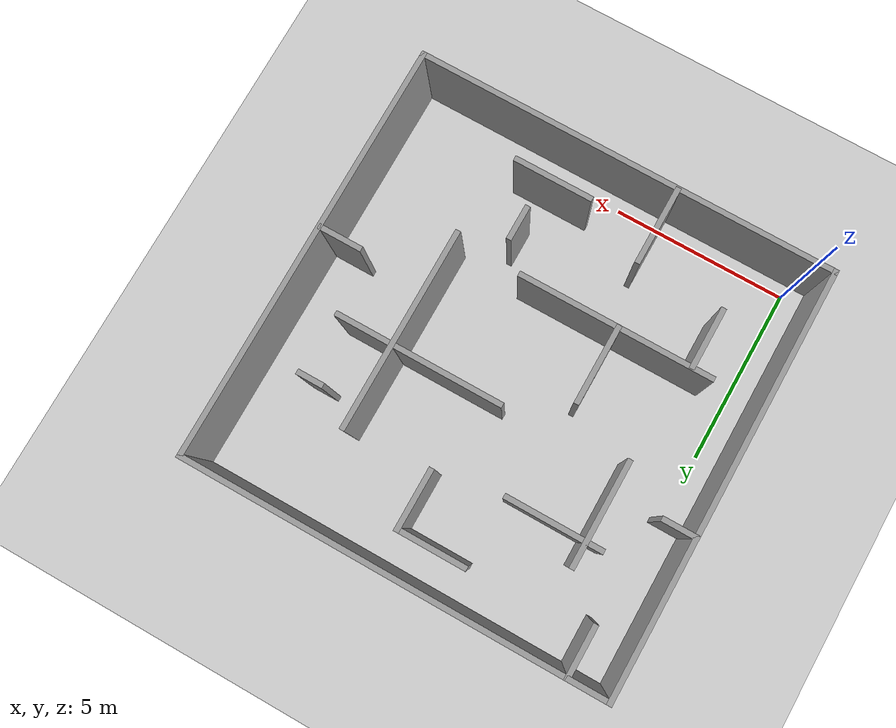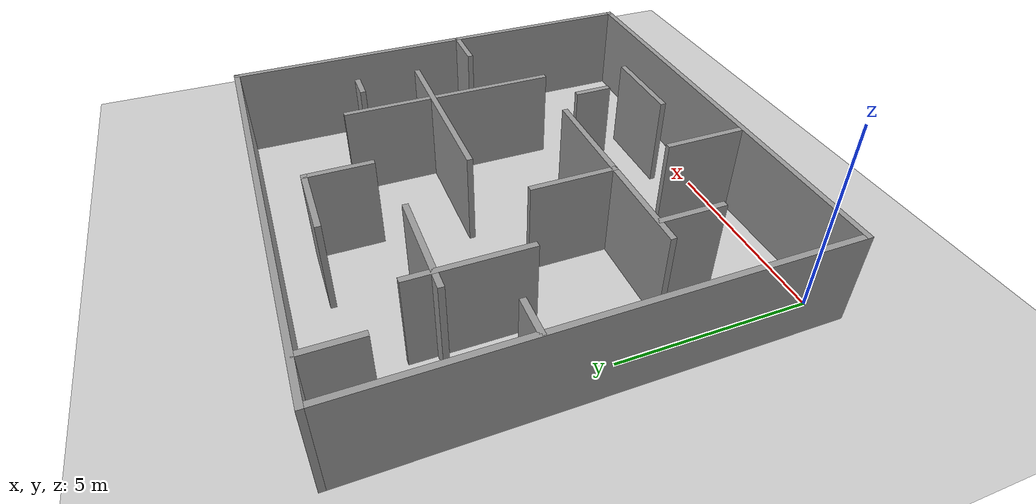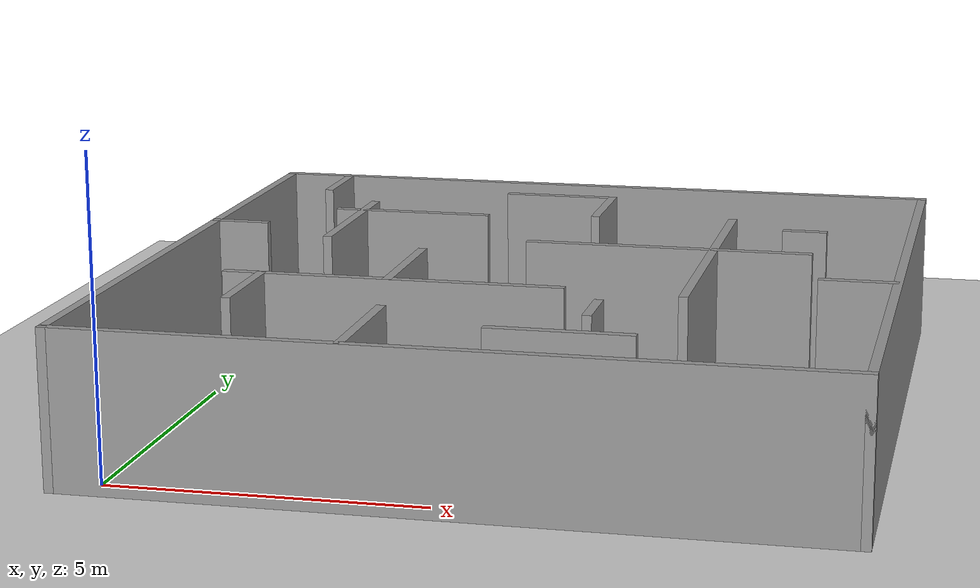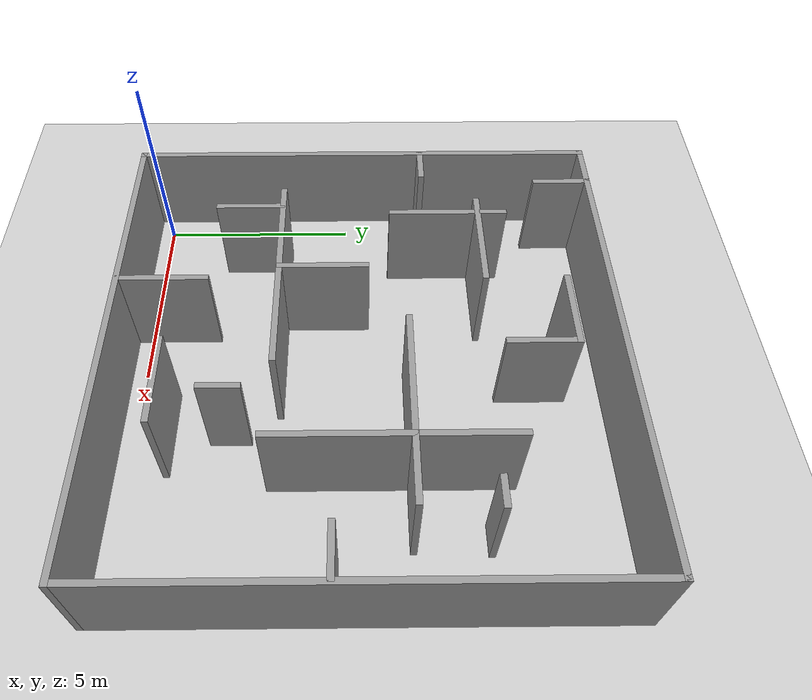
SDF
<sdf version="1.7">
 <world name="default">
  <light name="sun" type="directional">
   <pose>0 0 10 0 -0 0</pose>
   <diffuse>0.8 0.8 0.8 1</diffuse>
   <specular>0.2 0.2 0.2 1</specular>
   <attenuation>
    <range>1000</range>
    <constant>0.9</constant>
    <linear>0.01</linear>
    <quadratic>0.001</quadratic>
   </attenuation>
   <direction>-0.5 0.1 -0.9</direction>
   <spot><inner_angle>0</inner_angle><outer_angle>0</outer_angle><falloff>0</falloff></spot>
  </light>
  <model name="ground_plane">
   <static>1</static>
   <link name="link">
    <collision name="collision">
     <geometry><plane><normal>0 0 1</normal><size>100 100</size></plane></geometry>
     <surface><friction><ode><mu>100</mu><mu2>50</mu2></ode></friction></surface>
    </collision>
    <visual name="visual">
     <cast_shadows>0</cast_shadows>
     <geometry><plane><normal>0 0 1</normal><size>100 100</size></plane></geometry>
     <material>
      <script><uri>file://media/materials/scripts/gazebo.material</uri><name>Gazebo/Grey</name></script>
     </material>
    </visual>
   </link>
  </model>
  <gravity>0 0 -9.8</gravity>
  <magnetic_field>6e-06 2.3e-05 -4.2e-05</magnetic_field>
  <atmosphere type="adiabatic"/>
  <physics type="ode">
   <max_step_size>0.001</max_step_size>
   <real_time_factor>1</real_time_factor>
   <real_time_update_rate>1000</real_time_update_rate>
  </physics>
  <scene><ambient>0.4 0.4 0.4 1</ambient><background>0.7 0.7 0.7 1</background><shadows>1</shadows></scene>
  <spherical_coordinates>
   <surface_model>EARTH_WGS84</surface_model>
   <latitude_deg>0</latitude_deg>
   <longitude_deg>0</longitude_deg>
   <elevation>0</elevation>
   <heading_deg>0</heading_deg>
  </spherical_coordinates>
  <model name="room">
   <pose>5.30919 5.48421 0 0 -0 0</pose>
   <link name="Wall_0">
    <collision name="Wall_0_Collision">
     <geometry><box><size>12 0.15 2.5</size></box></geometry>
     <pose>0 0 1.25 0 -0 0</pose>
    </collision>
    <visual name="Wall_0_Visual">
     <pose>0 0 1.25 0 -0 0</pose>
     <geometry><box><size>12 0.15 2.5</size></box></geometry>
     <material>
      <script><uri>file://media/materials/scripts/gazebo.material</uri><name>Gazebo/Grey</name></script>
      <ambient>1 1 1 1</ambient>
     </material>
     <meta><layer>0</layer></meta>
    </visual>
    <pose>-5.925 -0.000291 0 0 -0 -1.5708</pose>
   </link>
   <link name="Wall_1">
    <collision name="Wall_1_Collision">
     <geometry><box><size>12 0.15 2.5</size></box></geometry>
     <pose>0 0 1.25 0 -0 0</pose>
    </collision>
    <visual name="Wall_1_Visual">
     <pose>0 0 1.25 0 -0 0</pose>
     <geometry><box><size>12 0.15 2.5</size></box></geometry>
     <material>
      <script><uri>file://media/materials/scripts/gazebo.material</uri><name>Gazebo/Grey</name></script>
      <ambient>1 1 1 1</ambient>
     </material>
     <meta><layer>0</layer></meta>
    </visual>
    <pose>0 -5.92529 0 0 -0 0</pose>
   </link>
   <link name="Wall_10">
    <collision name="Wall_10_Collision">
     <geometry><box><size>2 0.15 2.5</size></box></geometry>
     <pose>0 0 1.25 0 -0 0</pose>
    </collision>
    <visual name="Wall_10_Visual">
     <pose>0 0 1.25 0 -0 0</pose>
     <geometry><box><size>2 0.15 2.5</size></box></geometry>
     <material>
      <script><uri>file://media/materials/scripts/gazebo.material</uri><name>Gazebo/Grey</name></script>
      <ambient>1 1 1 1</ambient>
     </material>
     <meta><layer>0</layer></meta>
    </visual>
    <pose>-0.485822 4.87694 0 0 -0 0</pose>
   </link>
   <link name="Wall_11">
    <collision name="Wall_11_Collision">
     <geometry><box><size>1.75 0.15 2.5</size></box></geometry>
     <pose>0 0 1.25 0 -0 0</pose>
    </collision>
    <visual name="Wall_11_Visual">
     <pose>0 0 1.25 0 -0 0</pose>
     <geometry><box><size>1.75 0.15 2.5</size></box></geometry>
     <material>
      <script><uri>file://media/materials/scripts/gazebo.material</uri><name>Gazebo/Grey</name></script>
      <ambient>1 1 1 1</ambient>
     </material>
     <meta><layer>0</layer></meta>
    </visual>
    <pose>0.439178 4.07694 0 0 -0 -1.5708</pose>
   </link>
   <link name="Wall_13">
    <collision name="Wall_13_Collision">
     <geometry><box><size>4.75 0.15 2.5</size></box></geometry>
     <pose>0 0 1.25 0 -0 0</pose>
    </collision>
    <visual name="Wall_13_Visual">
     <pose>0 0 1.25 0 -0 0</pose>
     <geometry><box><size>4.75 0.15 2.5</size></box></geometry>
     <material>
      <script><uri>file://media/materials/scripts/gazebo.material</uri><name>Gazebo/Grey</name></script>
      <ambient>1 1 1 1</ambient>
     </material>
     <meta><layer>0</layer></meta>
    </visual>
    <pose>2.06025 1.04434 0 0 -0 0</pose>
   </link>
   <link name="Wall_15">
    <collision name="Wall_15_Collision">
     <geometry><box><size>5.75 0.15 2.5</size></box></geometry>
     <pose>0 0 1.25 0 -0 0</pose>
    </collision>
    <visual name="Wall_15_Visual">
     <pose>0 0 1.25 0 -0 0</pose>
     <geometry><box><size>5.75 0.15 2.5</size></box></geometry>
     <material>
      <script><uri>file://media/materials/scripts/gazebo.material</uri><name>Gazebo/Grey</name></script>
      <ambient>1 1 1 1</ambient>
     </material>
     <meta><layer>0</layer></meta>
    </visual>
    <pose>2.81721 0.601693 0 0 -0 -1.5708</pose>
   </link>
   <link name="Wall_17">
    <collision name="Wall_17_Collision">
     <geometry><box><size>0.75 0.15 2.5</size></box></geometry>
     <pose>0 0 1.25 0 -0 0</pose>
    </collision>
    <visual name="Wall_17_Visual">
     <pose>0 0 1.25 0 -0 0</pose>
     <geometry><box><size>0.75 0.15 2.5</size></box></geometry>
     <material>
      <script><uri>file://media/materials/scripts/gazebo.material</uri><name>Gazebo/Grey</name></script>
      <ambient>1 1 1 1</ambient>
     </material>
     <meta><layer>0</layer></meta>
    </visual>
    <pose>4.1362 2.76293 0 0 -0 0</pose>
   </link>
   <link name="Wall_19">
    <collision name="Wall_19_Collision">
     <geometry><box><size>5.5 0.15 2.5</size></box></geometry>
     <pose>0 0 1.25 0 -0 0</pose>
    </collision>
    <visual name="Wall_19_Visual">
     <pose>0 0 1.25 0 -0 0</pose>
     <geometry><box><size>5.5 0.15 2.5</size></box></geometry>
     <material>
      <script><uri>file://media/materials/scripts/gazebo.material</uri><name>Gazebo/Grey</name></script>
      <ambient>1 1 1 1</ambient>
     </material>
     <meta><layer>0</layer></meta>
    </visual>
    <pose>-1.79388 -2.04516 0 0 -0 0</pose>
   </link>
   <link name="Wall_21">
    <collision name="Wall_21_Collision">
     <geometry><box><size>2.25 0.15 2.5</size></box></geometry>
     <pose>0 0 1.25 0 -0 0</pose>
    </collision>
    <visual name="Wall_21_Visual">
     <pose>0 0 1.25 0 -0 0</pose>
     <geometry><box><size>2.25 0.15 2.5</size></box></geometry>
     <material>
      <script><uri>file://media/materials/scripts/gazebo.material</uri><name>Gazebo/Grey</name></script>
      <ambient>1 1 1 1</ambient>
     </material>
     <meta><layer>0</layer></meta>
    </visual>
    <pose>-1.86286 -0.986476 0 0 -0 -1.5708</pose>
   </link>
   <link name="Wall_23">
    <collision name="Wall_23_Collision">
     <geometry><box><size>1.75 0.15 2.5</size></box></geometry>
     <pose>0 0 1.25 0 -0 0</pose>
    </collision>
    <visual name="Wall_23_Visual">
     <pose>0 0 1.25 0 -0 0</pose>
     <geometry><box><size>1.75 0.15 2.5</size></box></geometry>
     <material>
      <script><uri>file://media/materials/scripts/gazebo.material</uri><name>Gazebo/Grey</name></script>
      <ambient>1 1 1 1</ambient>
     </material>
     <meta><layer>0</layer></meta>
    </visual>
    <pose>-3.9216 -2.87869 0 0 -0 -1.5708</pose>
   </link>
   <link name="Wall_25">
    <collision name="Wall_25_Collision">
     <geometry><box><size>2.25 0.15 2.5</size></box></geometry>
     <pose>0 0 1.25 0 -0 0</pose>
    </collision>
    <visual name="Wall_25_Visual">
     <pose>0 0 1.25 0 -0 0</pose>
     <geometry><box><size>2.25 0.15 2.5</size></box></geometry>
     <material>
      <script><uri>file://media/materials/scripts/gazebo.material</uri><name>Gazebo/Grey</name></script>
      <ambient>1 1 1 1</ambient>
     </material>
     <meta><layer>0</layer></meta>
    </visual>
    <pose>-1.49599 -4.83169 0 0 -0 -1.5708</pose>
   </link>
   <link name="Wall_29">
    <collision name="Wall_29_Collision">
     <geometry><box><size>1 0.15 2.5</size></box></geometry>
     <pose>0 0 1.25 0 -0 0</pose>
    </collision>
    <visual name="Wall_29_Visual">
     <pose>0 0 1.25 0 -0 0</pose>
     <geometry><box><size>1 0.15 2.5</size></box></geometry>
     <material>
      <script><uri>file://media/materials/scripts/gazebo.material</uri><name>Gazebo/Grey</name></script>
      <ambient>1 1 1 1</ambient>
     </material>
     <meta><layer>0</layer></meta>
    </visual>
    <pose>-5.47897 1.56094 0 0 -0 0</pose>
   </link>
   <link name="Wall_3">
    <collision name="Wall_3_Collision">
     <geometry><box><size>12 0.15 2.5</size></box></geometry>
     <pose>0 0 1.25 0 -0 0</pose>
    </collision>
    <visual name="Wall_3_Visual">
     <pose>0 0 1.25 0 -0 0</pose>
     <geometry><box><size>12 0.15 2.5</size></box></geometry>
     <material>
      <script><uri>file://media/materials/scripts/gazebo.material</uri><name>Gazebo/Grey</name></script>
      <ambient>1 1 1 1</ambient>
     </material>
     <meta><layer>0</layer></meta>
    </visual>
    <pose>0 5.92471 0 0 -0 0</pose>
   </link>
   <link name="Wall_31">
    <collision name="Wall_31_Collision">
     <geometry><box><size>1.5 0.15 2.5</size></box></geometry>
     <pose>0 0 1.25 0 -0 0</pose>
    </collision>
    <visual name="Wall_31_Visual">
     <pose>0 0 1.25 0 -0 0</pose>
     <geometry><box><size>1.5 0.15 2.5</size></box></geometry>
     <material>
      <script><uri>file://media/materials/scripts/gazebo.material</uri><name>Gazebo/Grey</name></script>
      <ambient>1 1 1 1</ambient>
     </material>
     <meta><layer>0</layer></meta>
    </visual>
    <pose>-4.78412 5.25029 0 0 -0 -1.5708</pose>
   </link>
   <link name="Wall_33">
    <collision name="Wall_33_Collision">
     <geometry><box><size>1.25 0.15 2.5</size></box></geometry>
     <pose>0 0 1.25 0 -0 0</pose>
    </collision>
    <visual name="Wall_33_Visual">
     <pose>0 0 1.25 0 -0 0</pose>
     <geometry><box><size>1.25 0.15 2.5</size></box></geometry>
     <material>
      <script><uri>file://media/materials/scripts/gazebo.material</uri><name>Gazebo/Grey</name></script>
      <ambient>1 1 1 1</ambient>
     </material>
     <meta><layer>0</layer></meta>
    </visual>
    <pose>5.31545 -0.668462 0 0 -0 0</pose>
   </link>
   <link name="Wall_35">
    <collision name="Wall_35_Collision">
     <geometry><box><size>2.25 0.15 2.5</size></box></geometry>
     <pose>0 0 1.25 0 -0 0</pose>
    </collision>
    <visual name="Wall_35_Visual">
     <pose>0 0 1.25 0 -0 0</pose>
     <geometry><box><size>2.25 0.15 2.5</size></box></geometry>
     <material>
      <script><uri>file://media/materials/scripts/gazebo.material</uri><name>Gazebo/Grey</name></script>
      <ambient>1 1 1 1</ambient>
     </material>
     <meta><layer>0</layer></meta>
    </visual>
    <pose>1.38779 -4.62312 0 0 -0 0</pose>
   </link>
   <link name="Wall_37">
    <collision name="Wall_37_Collision">
     <geometry><box><size>1 0.15 2.5</size></box></geometry>
     <pose>0 0 1.25 0 -0 0</pose>
    </collision>
    <visual name="Wall_37_Visual">
     <pose>0 0 1.25 0 -0 0</pose>
     <geometry><box><size>1 0.15 2.5</size></box></geometry>
     <material>
      <script><uri>file://media/materials/scripts/gazebo.material</uri><name>Gazebo/Grey</name></script>
      <ambient>1 1 1 1</ambient>
     </material>
     <meta><layer>0</layer></meta>
    </visual>
    <pose>1.60278 -3.18512 0 0 -0 -1.5708</pose>
   </link>
   <link name="Wall_4">
    <collision name="Wall_4_Collision">
     <geometry><box><size>12 0.15 2.5</size></box></geometry>
     <pose>0 0 1.25 0 -0 0</pose>
    </collision>
    <visual name="Wall_4_Visual">
     <pose>0 0 1.25 0 -0 0</pose>
     <geometry><box><size>12 0.15 2.5</size></box></geometry>
     <material>
      <script><uri>file://media/materials/scripts/gazebo.material</uri><name>Gazebo/Grey</name></script>
      <ambient>1 1 1 1</ambient>
     </material>
     <meta><layer>0</layer></meta>
    </visual>
    <pose>5.925 -0.000291 0 0 -0 -1.5708</pose>
   </link>
   <link name="Wall_6">
    <collision name="Wall_6_Collision">
     <geometry><box><size>2.75 0.15 2.5</size></box></geometry>
     <pose>0 0 1.25 0 -0 0</pose>
    </collision>
    <visual name="Wall_6_Visual">
     <pose>0 0 1.25 0 -0 0</pose>
     <geometry><box><size>2.75 0.15 2.5</size></box></geometry>
     <material>
      <script><uri>file://media/materials/scripts/gazebo.material</uri><name>Gazebo/Grey</name></script>
      <ambient>1 1 1 1</ambient>
     </material>
     <meta><layer>0</layer></meta>
    </visual>
    <pose>-2.78119 2.93464 0 0 -0 0</pose>
   </link>
   <link name="Wall_8">
    <collision name="Wall_8_Collision">
     <geometry><box><size>3 0.15 2.5</size></box></geometry>
     <pose>0 0 1.25 0 -0 0</pose>
    </collision>
    <visual name="Wall_8_Visual">
     <pose>0 0 1.25 0 -0 0</pose>
     <geometry><box><size>3 0.15 2.5</size></box></geometry>
     <material>
      <script><uri>file://media/materials/scripts/gazebo.material</uri><name>Gazebo/Grey</name></script>
      <ambient>1 1 1 1</ambient>
     </material>
     <meta><layer>0</layer></meta>
    </visual>
    <pose>-3.66172 2.17441 0 0 -0 -1.5708</pose>
   </link>
   <static>1</static>
  </model>
 </world>
</sdf>
